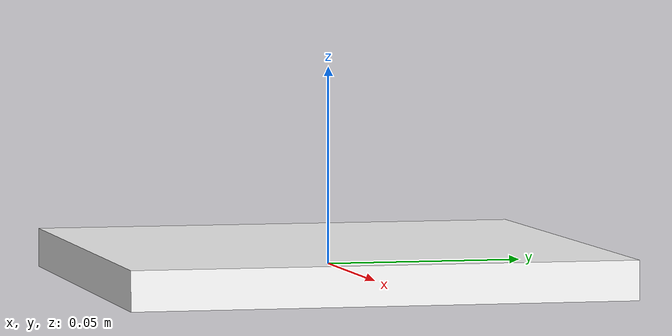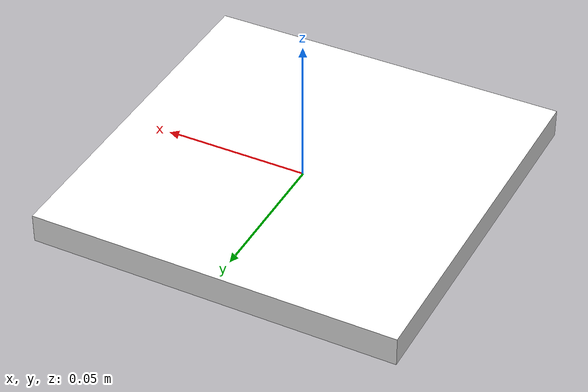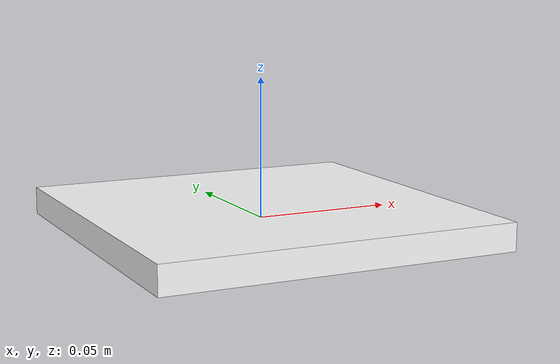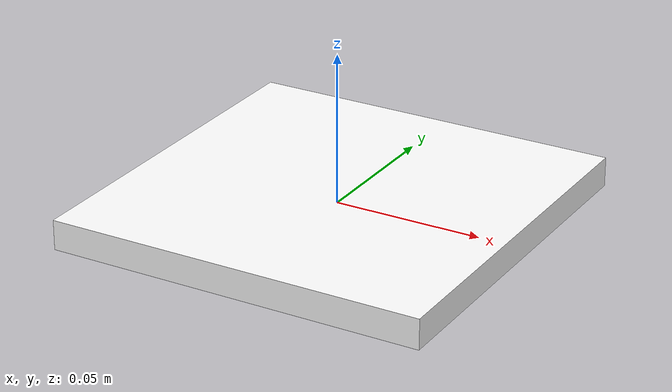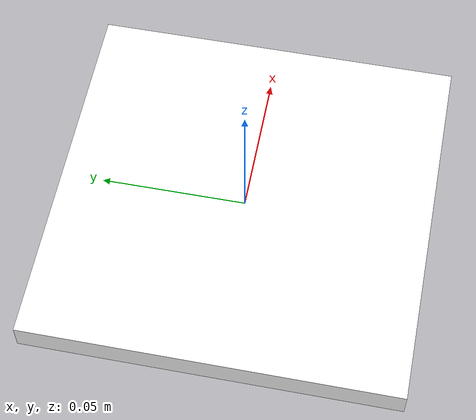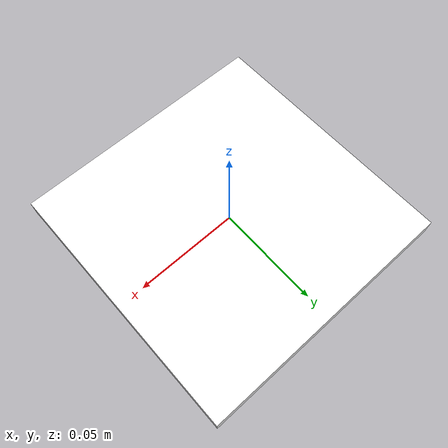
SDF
<?xml version="1.0"?>
<sdf version="1.9">
  <model name="apriltag_36h11_1">
    <static>true</static>
    <link name="link">
      <visual name="visual">
        <geometry>
          <box>
            <size>0.127 0.127 0.01</size>
          </box>
        </geometry>
        <material>
          <ambient>1 1 1 1</ambient>
          <diffuse>1 1 1 1</diffuse>
          <specular>0.5 0.5 0.5 1</specular>
          <pbr>
            <metal>
              <albedo_map>materials/textures/tag36h11_1.png</albedo_map>
              <roughness>0.5</roughness>
              <metalness>0.0</metalness>
            </metal>
          </pbr>
        </material>
      </visual>
      <collision name="collision">
        <geometry>
          <box>
            <size>0.127 0.127 0.01</size>
          </box>
        </geometry>
      </collision>
    </link>
  </model>
</sdf>
